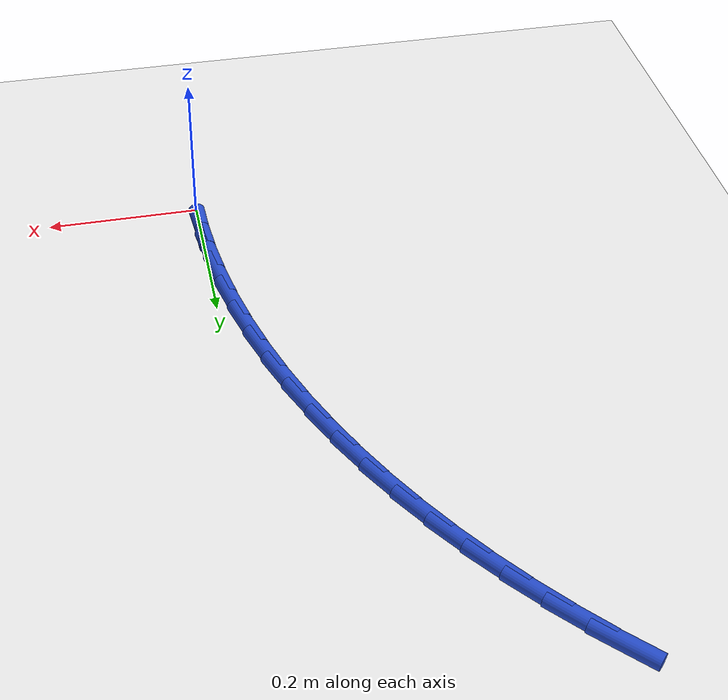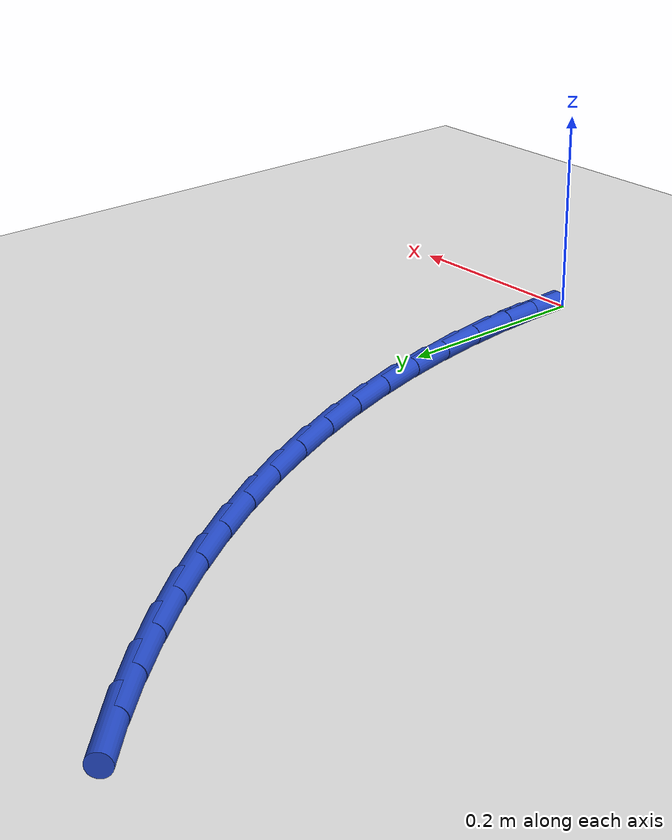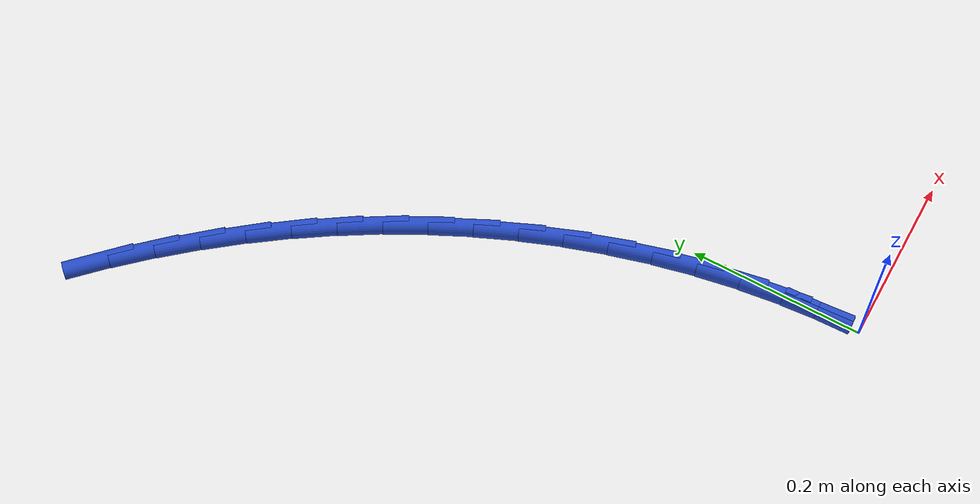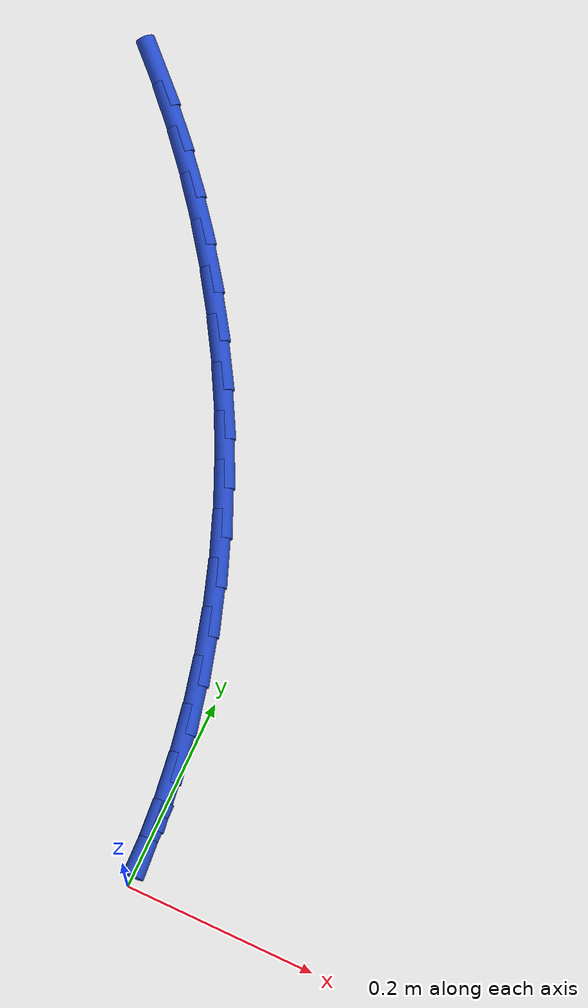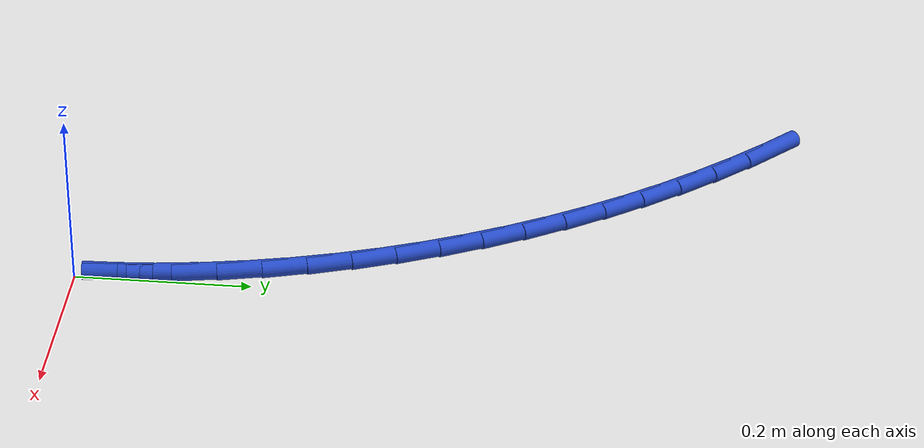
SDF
<sdf version="1.6">
 <world name="default">
  <model name="ground_plane">
   <static>1</static>
   <link name="link">
    <collision name="collision">
     <geometry><plane><normal>0 0 1</normal><size>100 100</size></plane></geometry>
     <surface><friction><ode><mu>100</mu><mu2>50</mu2></ode></friction></surface>
    </collision>
    <visual name="visual">
     <cast_shadows>0</cast_shadows>
     <geometry><plane><normal>0 0 1</normal><size>100 100</size></plane></geometry>
     <material>
      <script><uri>file://media/materials/scripts/gazebo.material</uri><name>Gazebo/WhiteGlow</name></script>
     </material>
    </visual>
   </link>
  </model>
  <model name="line">
   <link name="link_1">
    <pose>-0.0014006014495590987 0.04972835962023079 0.01 0 1.57 -1.4909841500976586</pose>
    <collision name="collision">
     <geometry><cylinder><radius>0.01</radius><length>0.08</length></cylinder></geometry>
    </collision>
    <visual name="visual">
     <material>
      <script><name>Gazebo/Blue</name><uri>file://media/materials/scripts/gazebo.material</uri></script>
     </material>
     <geometry><cylinder><radius>0.01</radius><length>0.08</length></cylinder></geometry>
    </visual>
   </link>
   <link name="link_2">
    <pose>-0.005373536426071804 0.09940117537971081 0.01 0 1.57 -1.440521861142242</pose>
    <collision name="collision">
     <geometry><cylinder><radius>0.01</radius><length>0.08</length></cylinder></geometry>
    </collision>
    <visual name="visual">
     <material>
      <script><name>Gazebo/Blue</name><uri>file://media/materials/scripts/gazebo.material</uri></script>
     </material>
     <geometry><cylinder><radius>0.01</radius><length>0.08</length></cylinder></geometry>
    </visual>
   </link>
   <link name="link_3">
    <pose>-0.011860231685034568 0.14891170272382612 0.01 0 1.57 -1.3911613697983285</pose>
    <collision name="collision">
     <geometry><cylinder><radius>0.01</radius><length>0.08</length></cylinder></geometry>
    </collision>
    <visual name="visual">
     <material>
      <script><name>Gazebo/Blue</name><uri>file://media/materials/scripts/gazebo.material</uri></script>
     </material>
     <geometry><cylinder><radius>0.01</radius><length>0.08</length></cylinder></geometry>
    </visual>
   </link>
   <link name="link_4">
    <pose>-0.020802113981943836 0.19815319709796259 0.01 0 1.57 -1.3427972180517986</pose>
    <collision name="collision">
     <geometry><cylinder><radius>0.01</radius><length>0.08</length></cylinder></geometry>
    </collision>
    <visual name="visual">
     <material>
      <script><name>Gazebo/Blue</name><uri>file://media/materials/scripts/gazebo.material</uri></script>
     </material>
     <geometry><cylinder><radius>0.01</radius><length>0.08</length></cylinder></geometry>
    </visual>
   </link>
   <link name="link_5">
    <pose>-0.03214061007229607 0.24701891394750633 0.01 0 1.57 -1.2953123250698837</pose>
    <collision name="collision">
     <geometry><cylinder><radius>0.01</radius><length>0.08</length></cylinder></geometry>
    </collision>
    <visual name="visual">
     <material>
      <script><name>Gazebo/Blue</name><uri>file://media/materials/scripts/gazebo.material</uri></script>
     </material>
     <geometry><cylinder><radius>0.01</radius><length>0.08</length></cylinder></geometry>
    </visual>
   </link>
   <link name="link_6">
    <pose>-0.045817146711587736 0.2954021087178432 0.01 0 1.57 -1.2485808250050854</pose>
    <collision name="collision">
     <geometry><cylinder><radius>0.01</radius><length>0.08</length></cylinder></geometry>
    </collision>
    <visual name="visual">
     <material>
      <script><name>Gazebo/Blue</name><uri>file://media/materials/scripts/gazebo.material</uri></script>
     </material>
     <geometry><cylinder><radius>0.01</radius><length>0.08</length></cylinder></geometry>
    </visual>
   </link>
   <link name="link_7">
    <pose>-0.06177315065531524 0.3431960368543592 0.01 0 1.57 -1.2024704195762512</pose>
    <collision name="collision">
     <geometry><cylinder><radius>0.01</radius><length>0.08</length></cylinder></geometry>
    </collision>
    <visual name="visual">
     <material>
      <script><name>Gazebo/Blue</name><uri>file://media/materials/scripts/gazebo.material</uri></script>
     </material>
     <geometry><cylinder><radius>0.01</radius><length>0.08</length></cylinder></geometry>
    </visual>
   </link>
   <link name="link_8">
    <pose>-0.0799500486589751 0.39029395380244036 0.01 0 1.57 -1.1568443238065917</pose>
    <collision name="collision">
     <geometry><cylinder><radius>0.01</radius><length>0.08</length></cylinder></geometry>
    </collision>
    <visual name="visual">
     <material>
      <script><name>Gazebo/Blue</name><uri>file://media/materials/scripts/gazebo.material</uri></script>
     </material>
     <geometry><cylinder><radius>0.01</radius><length>0.08</length></cylinder></geometry>
    </visual>
   </link>
   <link name="link_9">
    <pose>-0.10028926653222565 0.4365891161545513 0.01 0 1.57 -1.1117178571968664</pose>
    <collision name="collision">
     <geometry><cylinder><radius>0.01</radius><length>0.08</length></cylinder></geometry>
    </collision>
    <visual name="visual">
     <material>
      <script><name>Gazebo/Blue</name><uri>file://media/materials/scripts/gazebo.material</uri></script>
     </material>
     <geometry><cylinder><radius>0.01</radius><length>0.08</length></cylinder></geometry>
    </visual>
   </link>
   <link name="link_10">
    <pose>-0.12272675383173182 0.4819814219065906 0.01 0 1.57 -1.0674873478157727</pose>
    <collision name="collision">
     <geometry><cylinder><radius>0.01</radius><length>0.08</length></cylinder></geometry>
    </collision>
    <visual name="visual">
     <material>
      <script><name>Gazebo/Blue</name><uri>file://media/materials/scripts/gazebo.material</uri></script>
     </material>
     <geometry><cylinder><radius>0.01</radius><length>0.08</length></cylinder></geometry>
    </visual>
   </link>
   <link name="link_11">
    <pose>-0.14718009467266394 0.5263930420039296 0.01 0 1.57 -1.0241547969968348</pose>
    <collision name="collision">
     <geometry><cylinder><radius>0.01</radius><length>0.08</length></cylinder></geometry>
    </collision>
    <visual name="visual">
     <material>
      <script><name>Gazebo/Blue</name><uri>file://media/materials/scripts/gazebo.material</uri></script>
     </material>
     <geometry><cylinder><radius>0.01</radius><length>0.08</length></cylinder></geometry>
    </visual>
   </link>
   <link name="link_12">
    <pose>-0.17356302752623196 0.569750811251157 0.01 0 1.57 -0.9816073203401003</pose>
    <collision name="collision">
     <geometry><cylinder><radius>0.01</radius><length>0.08</length></cylinder></geometry>
    </collision>
    <visual name="visual">
     <material>
      <script><name>Gazebo/Blue</name><uri>file://media/materials/scripts/gazebo.material</uri></script>
     </material>
     <geometry><cylinder><radius>0.01</radius><length>0.08</length></cylinder></geometry>
    </visual>
   </link>
   <link name="link_13">
    <pose>-0.20178929086364605 0.611981564452862 0.01 0 1.57 -0.9397256333902346</pose>
    <collision name="collision">
     <geometry><cylinder><radius>0.01</radius><length>0.08</length></cylinder></geometry>
    </collision>
    <visual name="visual">
     <material>
      <script><name>Gazebo/Blue</name><uri>file://media/materials/scripts/gazebo.material</uri></script>
     </material>
     <geometry><cylinder><radius>0.01</radius><length>0.08</length></cylinder></geometry>
    </visual>
   </link>
   <link name="link_14">
    <pose>-0.23177262315611633 0.6530121364136338 0.01 0 1.57 -0.8983854272027317</pose>
    <collision name="collision">
     <geometry><cylinder><radius>0.01</radius><length>0.08</length></cylinder></geometry>
    </collision>
    <visual name="visual">
     <material>
      <script><name>Gazebo/Blue</name><uri>file://media/materials/scripts/gazebo.material</uri></script>
     </material>
     <geometry><cylinder><radius>0.01</radius><length>0.08</length></cylinder></geometry>
    </visual>
   </link>
   <link name="link_15">
    <pose>-0.26342676287485295 0.6927693619380614 0.01 0 1.57 -0.8574584037486415</pose>
    <collision name="collision">
     <geometry><cylinder><radius>0.01</radius><length>0.08</length></cylinder></geometry>
    </collision>
    <visual name="visual">
     <material>
      <script><name>Gazebo/Blue</name><uri>file://media/materials/scripts/gazebo.material</uri></script>
     </material>
     <geometry><cylinder><radius>0.01</radius><length>0.08</length></cylinder></geometry>
    </visual>
   </link>
   <link name="link_16">
    <pose>-0.2966654484910659 0.7311800758307337 0.01 0 1.57 -0.8168130265218173</pose>
    <collision name="collision">
     <geometry><cylinder><radius>0.01</radius><length>0.08</length></cylinder></geometry>
    </collision>
    <visual name="visual">
     <material>
      <script><name>Gazebo/Blue</name><uri>file://media/materials/scripts/gazebo.material</uri></script>
     </material>
     <geometry><cylinder><radius>0.01</radius><length>0.08</length></cylinder></geometry>
    </visual>
   </link>
   <link name="link_17">
    <pose>-0.33140241847596535 0.7681711128962402 0.01 0 1.57 -0.7763150450848166</pose>
    <collision name="collision">
     <geometry><cylinder><radius>0.01</radius><length>0.08</length></cylinder></geometry>
    </collision>
    <visual name="visual">
     <material>
      <script><name>Gazebo/Blue</name><uri>file://media/materials/scripts/gazebo.material</uri></script>
     </material>
     <geometry><cylinder><radius>0.01</radius><length>0.08</length></cylinder></geometry>
    </visual>
   </link>
   <link name="link_141">
    <pose>-0.0014177513919558828 0.049734086101015255 0.01 0 1.57 -1.5422974107536573</pose>
    <collision name="collision">
     <geometry><cylinder><radius>0.01</radius><length>0.08</length></cylinder></geometry>
    </collision>
    <visual name="visual">
     <material>
      <script><name>Gazebo/Blue</name><uri>file://media/materials/scripts/gazebo.material</uri></script>
     </material>
     <geometry><cylinder><radius>0.01</radius><length>0.08</length></cylinder></geometry>
    </visual>
   </link>
  </model>
 </world>
</sdf>
